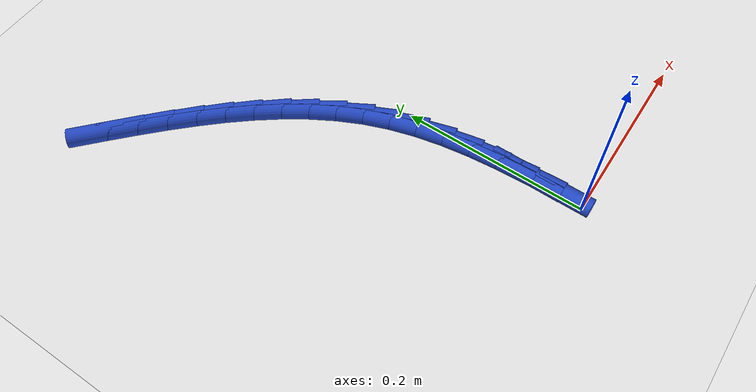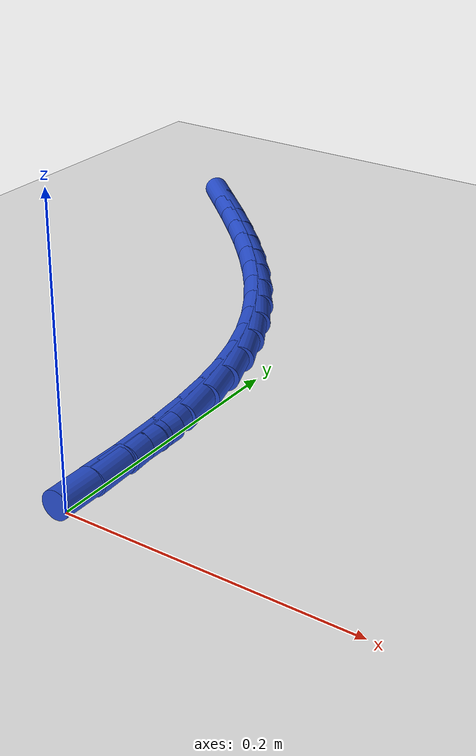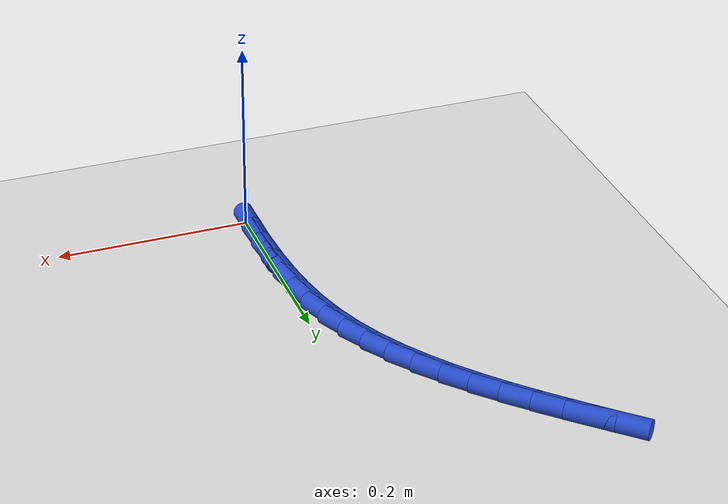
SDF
<sdf version="1.6">
 <world name="default">
  <model name="ground_plane">
   <static>1</static>
   <link name="link">
    <collision name="collision">
     <geometry><plane><normal>0 0 1</normal><size>100 100</size></plane></geometry>
     <surface><friction><ode><mu>100</mu><mu2>50</mu2></ode></friction></surface>
    </collision>
    <visual name="visual">
     <cast_shadows>0</cast_shadows>
     <geometry><plane><normal>0 0 1</normal><size>100 100</size></plane></geometry>
     <material>
      <script><uri>file://media/materials/scripts/gazebo.material</uri><name>Gazebo/WhiteGlow</name></script>
     </material>
    </visual>
   </link>
  </model>
  <model name="line">
   <link name="link_2">
    <pose>-1.5568919749777246e-05 0.06221073602198281 0.01 0 1.57 -1.5260380740022395</pose>
    <collision name="collision">
     <geometry><cylinder><radius>0.01</radius><length>0.08</length></cylinder></geometry>
    </collision>
    <visual name="visual">
     <material>
      <script><name>Gazebo/Blue</name><uri>file://media/materials/scripts/gazebo.material</uri></script>
     </material>
     <geometry><cylinder><radius>0.01</radius><length>0.08</length></cylinder></geometry>
    </visual>
   </link>
   <link name="link_3">
    <pose>-0.0014003664113200111 0.09312956237344915 0.01 0 1.57 -1.4844551805159991</pose>
    <collision name="collision">
     <geometry><cylinder><radius>0.01</radius><length>0.08</length></cylinder></geometry>
    </collision>
    <visual name="visual">
     <material>
      <script><name>Gazebo/Blue</name><uri>file://media/materials/scripts/gazebo.material</uri></script>
     </material>
     <geometry><cylinder><radius>0.01</radius><length>0.08</length></cylinder></geometry>
    </visual>
   </link>
   <link name="link_4">
    <pose>-0.004043584441484881 0.1236671063170625 0.01 0 1.57 -1.4329428710564218</pose>
    <collision name="collision">
     <geometry><cylinder><radius>0.01</radius><length>0.08</length></cylinder></geometry>
    </collision>
    <visual name="visual">
     <material>
      <script><name>Gazebo/Blue</name><uri>file://media/materials/scripts/gazebo.material</uri></script>
     </material>
     <geometry><cylinder><radius>0.01</radius><length>0.08</length></cylinder></geometry>
    </visual>
   </link>
   <link name="link_5">
    <pose>-0.00820053189834269 0.1536306768766956 0.01 0 1.57 -1.3705502632728215</pose>
    <collision name="collision">
     <geometry><cylinder><radius>0.01</radius><length>0.08</length></cylinder></geometry>
    </collision>
    <visual name="visual">
     <material>
      <script><name>Gazebo/Blue</name><uri>file://media/materials/scripts/gazebo.material</uri></script>
     </material>
     <geometry><cylinder><radius>0.01</radius><length>0.08</length></cylinder></geometry>
    </visual>
   </link>
   <link name="link_6">
    <pose>-0.014126517669991743 0.18282758307622118 0.01 0 1.57 -1.296349230374188</pose>
    <collision name="collision">
     <geometry><cylinder><radius>0.01</radius><length>0.08</length></cylinder></geometry>
    </collision>
    <visual name="visual">
     <material>
      <script><name>Gazebo/Blue</name><uri>file://media/materials/scripts/gazebo.material</uri></script>
     </material>
     <geometry><cylinder><radius>0.01</radius><length>0.08</length></cylinder></geometry>
    </visual>
   </link>
   <link name="link_7">
    <pose>-0.022076850644530355 0.21106513393951204 0.01 0 1.57 -1.2115966267768623</pose>
    <collision name="collision">
     <geometry><cylinder><radius>0.01</radius><length>0.08</length></cylinder></geometry>
    </collision>
    <visual name="visual">
     <material>
      <script><name>Gazebo/Blue</name><uri>file://media/materials/scripts/gazebo.material</uri></script>
     </material>
     <geometry><cylinder><radius>0.01</radius><length>0.08</length></cylinder></geometry>
    </visual>
   </link>
   <link name="link_8">
    <pose>-0.03225925524171878 0.23818281952524042 0.01 0 1.57 -1.1285021299202573</pose>
    <collision name="collision">
     <geometry><cylinder><radius>0.01</radius><length>0.08</length></cylinder></geometry>
    </collision>
    <visual name="visual">
     <material>
      <script><name>Gazebo/Blue</name><uri>file://media/materials/scripts/gazebo.material</uri></script>
     </material>
     <geometry><cylinder><radius>0.01</radius><length>0.08</length></cylinder></geometry>
    </visual>
   </link>
   <link name="link_9">
    <pose>-0.04458908963712881 0.26421785508702267 0.01 0 1.57 -1.0528841419258193</pose>
    <collision name="collision">
     <geometry><cylinder><radius>0.01</radius><length>0.08</length></cylinder></geometry>
    </collision>
    <visual name="visual">
     <material>
      <script><name>Gazebo/Blue</name><uri>file://media/materials/scripts/gazebo.material</uri></script>
     </material>
     <geometry><cylinder><radius>0.01</radius><length>0.08</length></cylinder></geometry>
    </visual>
   </link>
   <link name="link_10">
    <pose>-0.05887074644238485 0.2892825010938501 0.01 0 1.57 -0.9856624622728528</pose>
    <collision name="collision">
     <geometry><cylinder><radius>0.01</radius><length>0.08</length></cylinder></geometry>
    </collision>
    <visual name="visual">
     <material>
      <script><name>Gazebo/Blue</name><uri>file://media/materials/scripts/gazebo.material</uri></script>
     </material>
     <geometry><cylinder><radius>0.01</radius><length>0.08</length></cylinder></geometry>
    </visual>
   </link>
   <link name="link_11">
    <pose>-0.07490840553191591 0.3134891618873545 0.01 0 1.57 -0.927239807833921</pose>
    <collision name="collision">
     <geometry><cylinder><radius>0.01</radius><length>0.08</length></cylinder></geometry>
    </collision>
    <visual name="visual">
     <material>
      <script><name>Gazebo/Blue</name><uri>file://media/materials/scripts/gazebo.material</uri></script>
     </material>
     <geometry><cylinder><radius>0.01</radius><length>0.08</length></cylinder></geometry>
    </visual>
   </link>
   <link name="link_12">
    <pose>-0.09250624678015107 0.3369502418091671 0.01 0 1.57 -0.8776384261099346</pose>
    <collision name="collision">
     <geometry><cylinder><radius>0.01</radius><length>0.08</length></cylinder></geometry>
    </collision>
    <visual name="visual">
     <material>
      <script><name>Gazebo/Blue</name><uri>file://media/materials/scripts/gazebo.material</uri></script>
     </material>
     <geometry><cylinder><radius>0.01</radius><length>0.08</length></cylinder></geometry>
    </visual>
   </link>
   <link name="link_13">
    <pose>-0.11146845006151937 0.3597781452009199 0.01 0 1.57 -0.8366373205063286</pose>
    <collision name="collision">
     <geometry><cylinder><radius>0.01</radius><length>0.08</length></cylinder></geometry>
    </collision>
    <visual name="visual">
     <material>
      <script><name>Gazebo/Blue</name><uri>file://media/materials/scripts/gazebo.material</uri></script>
     </material>
     <geometry><cylinder><radius>0.01</radius><length>0.08</length></cylinder></geometry>
    </visual>
   </link>
   <link name="link_14">
    <pose>-0.13159919525044989 0.3820852764042439 0.01 0 1.57 -0.8038903607541457</pose>
    <collision name="collision">
     <geometry><cylinder><radius>0.01</radius><length>0.08</length></cylinder></geometry>
    </collision>
    <visual name="visual">
     <material>
      <script><name>Gazebo/Blue</name><uri>file://media/materials/scripts/gazebo.material</uri></script>
     </material>
     <geometry><cylinder><radius>0.01</radius><length>0.08</length></cylinder></geometry>
    </visual>
   </link>
   <link name="link_15">
    <pose>-0.15270266222137163 0.4039840397607711 0.01 0 1.57 -0.7790148887713376</pose>
    <collision name="collision">
     <geometry><cylinder><radius>0.01</radius><length>0.08</length></cylinder></geometry>
    </collision>
    <visual name="visual">
     <material>
      <script><name>Gazebo/Blue</name><uri>file://media/materials/scripts/gazebo.material</uri></script>
     </material>
     <geometry><cylinder><radius>0.01</radius><length>0.08</length></cylinder></geometry>
    </visual>
   </link>
   <link name="link_16">
    <pose>-0.17458303084871368 0.42558683961213273 0.01 0 1.57 -0.761651646574452</pose>
    <collision name="collision">
     <geometry><cylinder><radius>0.01</radius><length>0.08</length></cylinder></geometry>
    </collision>
    <visual name="visual">
     <material>
      <script><name>Gazebo/Blue</name><uri>file://media/materials/scripts/gazebo.material</uri></script>
     </material>
     <geometry><cylinder><radius>0.01</radius><length>0.08</length></cylinder></geometry>
    </visual>
   </link>
   <link name="link_17">
    <pose>-0.19704448100690494 0.44700608029996025 0.01 0 1.57 -0.7515016013901794</pose>
    <collision name="collision">
     <geometry><cylinder><radius>0.01</radius><length>0.08</length></cylinder></geometry>
    </collision>
    <visual name="visual">
     <material>
      <script><name>Gazebo/Blue</name><uri>file://media/materials/scripts/gazebo.material</uri></script>
     </material>
     <geometry><cylinder><radius>0.01</radius><length>0.08</length></cylinder></geometry>
    </visual>
   </link>
   <link name="link_291">
    <pose>0.00042553699493000645 0.031130874388361995 0.01 0 1.57 1.5697019395641227</pose>
    <collision name="collision">
     <geometry><cylinder><radius>0.01</radius><length>0.08</length></cylinder></geometry>
    </collision>
    <visual name="visual">
     <material>
      <script><name>Gazebo/Blue</name><uri>file://media/materials/scripts/gazebo.material</uri></script>
     </material>
     <geometry><cylinder><radius>0.01</radius><length>0.08</length></cylinder></geometry>
    </visual>
   </link>
   <link name="link_292">
    <pose>0.00045979166909724937 0.0624311852185601 0.01 0 1.57 1.563431684353189</pose>
    <collision name="collision">
     <geometry><cylinder><radius>0.01</radius><length>0.08</length></cylinder></geometry>
    </collision>
    <visual name="visual">
     <material>
      <script><name>Gazebo/Blue</name><uri>file://media/materials/scripts/gazebo.material</uri></script>
     </material>
     <geometry><cylinder><radius>0.01</radius><length>0.08</length></cylinder></geometry>
    </visual>
   </link>
  </model>
 </world>
</sdf>
